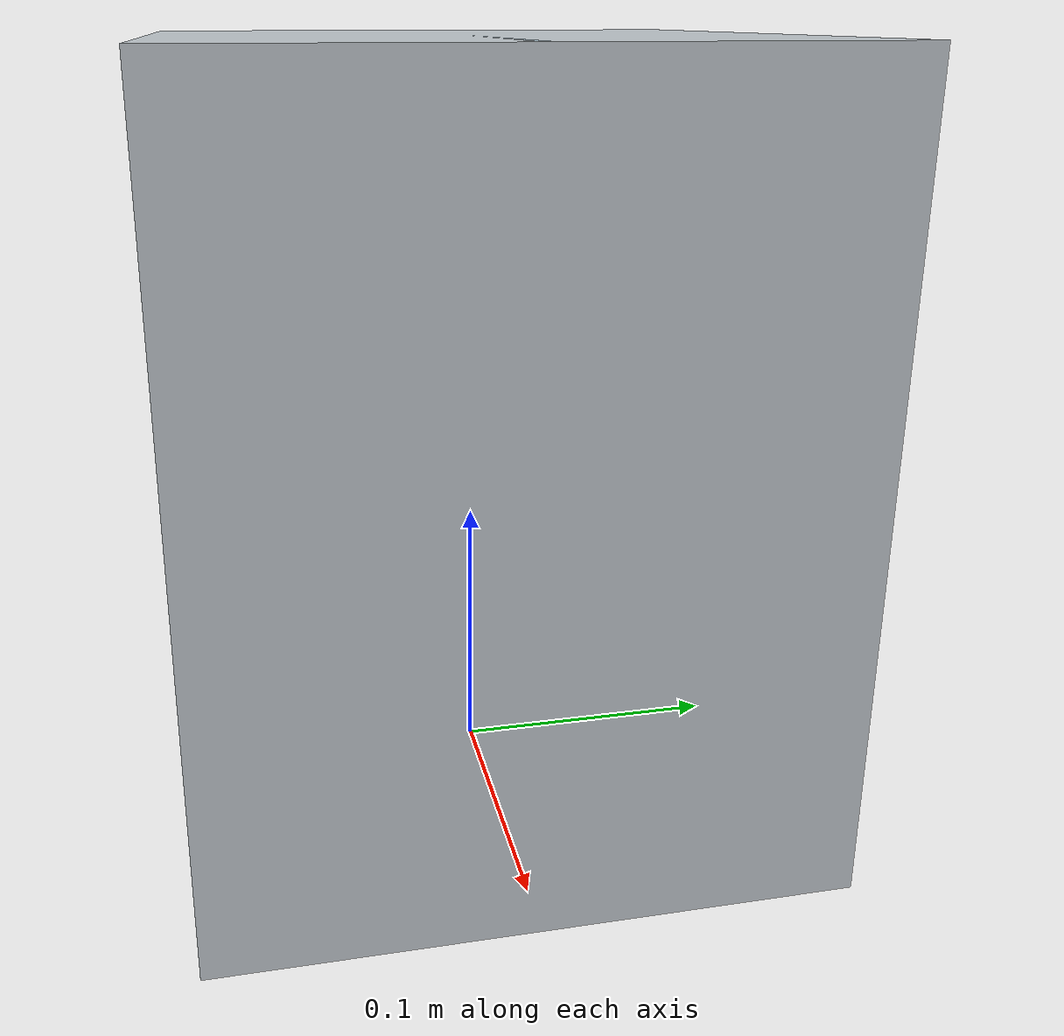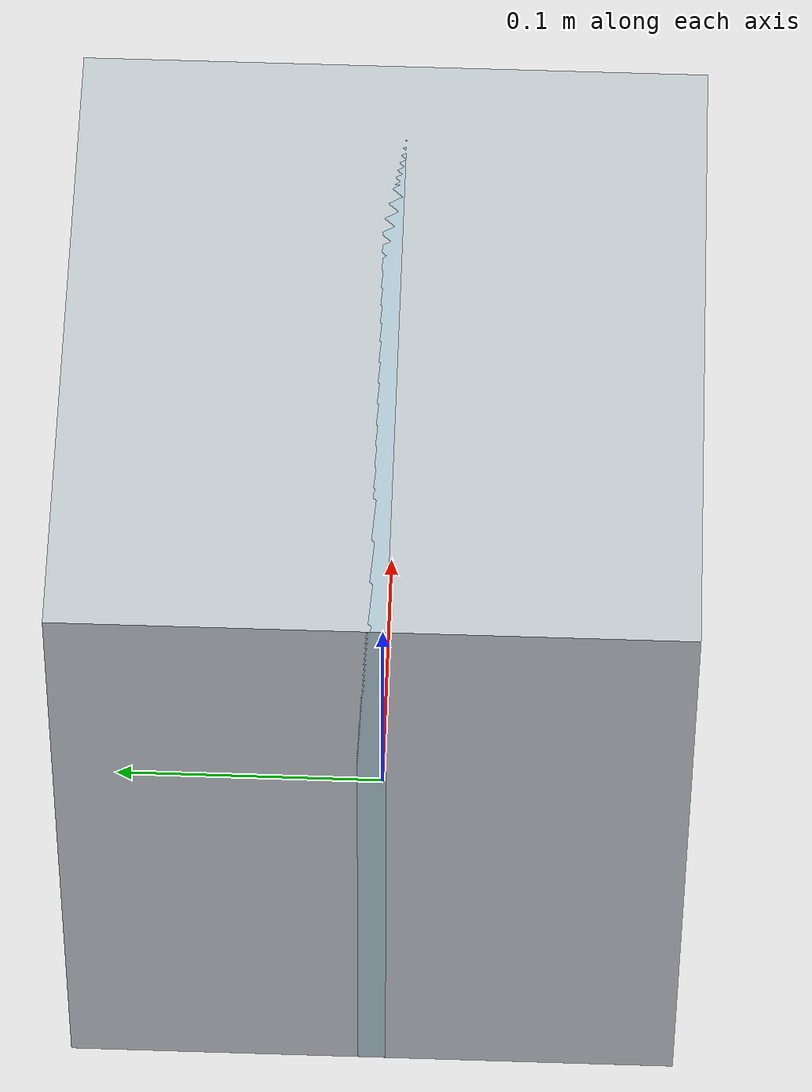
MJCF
<?xml version="1.0" encoding="utf-8"?>
<mujoco model="freezer_rack_access">
  <compiler angle="radian" autolimits="true"/>
  <default>
    <default class="body"><geom contype="1" conaffinity="1"/></default>
  </default>
  <worldbody>
    <body name="base">
      <geom type="box" size="0.12 0.11 0.14" pos="0 0 0.14" rgba="0.75 0.78 0.8 1" class="body"/>
      <body name="door" pos="-0.12 0.0 0.14">
        <joint name="door_joint" type="hinge" axis="0 0 1" range="0 1.8" damping="0.6" frictionloss="0.3"/>
  <geom type="box" size="0.12 0.005 0.14" pos="0.12 0 0" rgba="0.6 0.8 0.9 0.35" class="body"/>
      </body>
    </body>
  </worldbody>
</mujoco>
